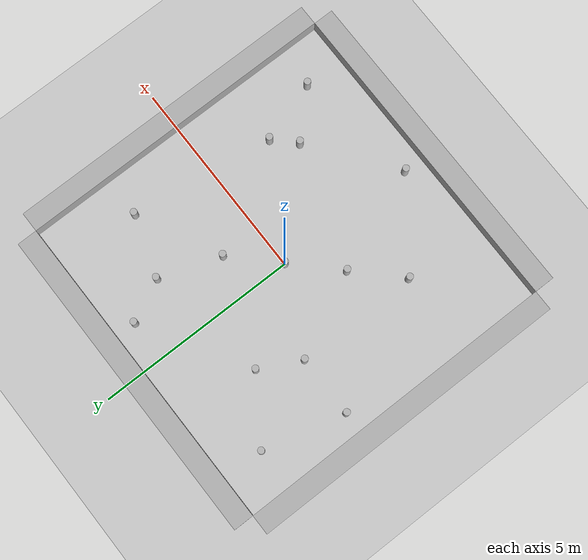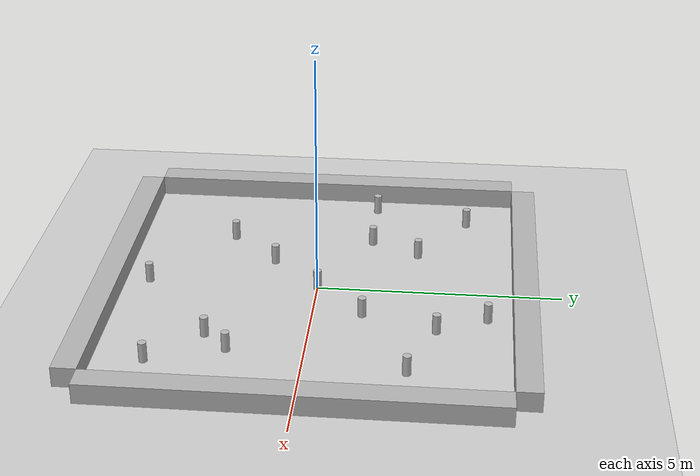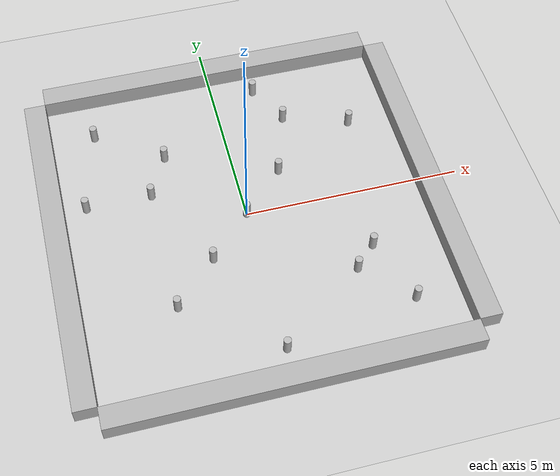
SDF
<?xml version="1.0" ?>
<sdf version="1.10">
    <world name="firearena">
        <physics name="1ms" type="ignored">
            <max_step_size>0.001</max_step_size>
            <real_time_factor>1.0</real_time_factor>
        </physics>
        <plugin
            filename="gz-sim-physics-system"
            name="gz::sim::systems::Physics">
        </plugin>
        <plugin
            filename="gz-sim-user-commands-system"
            name="gz::sim::systems::UserCommands">
        </plugin>
        <plugin
            filename="gz-sim-scene-broadcaster-system"
            name="gz::sim::systems::SceneBroadcaster">
        </plugin>
        <plugin filename="gz-sim-sensors-system"
            name="gz::sim::systems::Sensors">
            <render_engine>ogre2</render_engine>
        </plugin>

        <light type="directional" name="sun">
            <cast_shadows>true</cast_shadows>
            <pose>0 0 10 0 0 0</pose>
            <diffuse>0.8 0.8 0.8 1</diffuse>
            <specular>0.2 0.2 0.2 1</specular>
            <attenuation>
                <range>1000</range>
                <constant>0.9</constant>
                <linear>0.01</linear>
                <quadratic>0.001</quadratic>
            </attenuation>
            <direction>-0.5 0.1 -0.9</direction>
        </light>

        <model name="ground_plane">
            <static>true</static>
            <link name="link">
                <collision name="collision">
                    <geometry>
                        <plane>
                            <normal>0 0 1</normal>
                        </plane>
                    </geometry>
                </collision>
                <visual name="visual">
                    <geometry>
                        <plane>
                            <normal>0 0 1</normal>
                            <size>100 100</size>
                        </plane>
                    </geometry>
                    <material>
                        <ambient>0.8 0.8 0.8 1</ambient>
                        <diffuse>0.8 0.8 0.8 1</diffuse>
                        <specular>0.8 0.8 0.8 1</specular>
                    </material>
                </visual>
            </link>
        </model>

        <!-- Four-Wall Enclosure Model -->
        <model name="four_walls">
            <static>true</static>

            <!-- Wall 1 -->
            <link name="wall_1">
                <pose>-4.25 0 0.2084 0 0 0</pose>
                <visual name="visual_1">
                    <geometry>
                        <box>
                            <size>0.5 8 0.416666</size>
                        </box>
                    </geometry>
                    <material>
                        <ambient>0.7 0.7 0.7 1</ambient>
                    </material>
                </visual>
                <collision name="collision_1">
                    <geometry>
                        <box>
                            <size>0.5 8 0.416666</size>
                        </box>
                    </geometry>
                </collision>
            </link>

            <!-- Wall 2 -->
            <link name="wall_2">
                <pose>4.25 0 0.2084 0 0 0</pose>
                <visual name="visual_2">
                    <geometry>
                        <box>
                            <size>0.5 8 0.416666</size>
                        </box>
                    </geometry>
                    <material>
                        <ambient>0.7 0.7 0.7 1</ambient>
                    </material>
                </visual>
                <collision name="collision_2">
                    <geometry>
                        <box>
                            <size>0.5 8 0.416666</size>
                        </box>
                    </geometry>
                </collision>
            </link>

            <!-- Wall 3 -->
            <link name="wall_3">
                <pose>0 -4.25 0.2084 0 0 1.5708</pose>
                <visual name="visual_3">
                    <geometry>
                        <box>
                            <size>0.5 8 0.416666</size>
                        </box>
                    </geometry>
                    <material>
                        <ambient>0.7 0.7 0.7 1</ambient>
                    </material>
                </visual>
                <collision name="collision_3">
                    <geometry>
                        <box>
                            <size>0.5 8 0.416666</size>
                        </box>
                    </geometry>
                </collision>
            </link>

            <!-- Wall 4 -->
            <link name="wall_4">
                <pose>0 4.25 0.2084 0 0 1.5708</pose>
                <visual name="visual_4">
                    <geometry>
                        <box>
                            <size>0.5 8 0.416666</size>
                        </box>
                    </geometry>
                    <material>
                        <ambient>0.7 0.7 0.7 1</ambient>
                    </material>
                </visual>
                <collision name="collision_4">
                    <geometry>
                        <box>
                            <size>0.5 8 0.416666</size>
                        </box>
                    </geometry>
                </collision>
            </link>
        </model>

        <!-- Obstacles -->
        <model name="obstacles">
            <static>true</static>
            <link name="obstacle_1">
                <pose>1 1 0.2084 0 0 0</pose>
                <visual name="visual_1">
                    <geometry>
                        <cylinder>
                            <radius>0.0833</radius>
                            <length>0.4167</length>
                        </cylinder>
                    </geometry>
                </visual>
                <collision name="collision_1">
                    <geometry>
                        <cylinder>
                            <radius>0.0833</radius>
                            <length>0.4167</length>
                        </cylinder>
                    </geometry>
                </collision>
            </link>
            <link name="obstacle_2">
                <pose>-1 -1 0.2084 0 0 0</pose>
                <visual name="visual_2">
                    <geometry>
                        <cylinder>
                            <radius>0.0833</radius>
                            <length>0.4167</length>
                        </cylinder>
                    </geometry>
                </visual>
                <collision name="collision_2">
                    <geometry>
                        <cylinder>
                            <radius>0.0833</radius>
                            <length>0.4167</length>
                        </cylinder>
                    </geometry>
                </collision>
            </link>
            <link name="obstacle_3">
                <pose>2 -2 0.2084 0 0 0</pose>
                <visual name="visual_3">
                    <geometry>
                        <cylinder>
                            <radius>0.0833</radius>
                            <length>0.4167</length>
                        </cylinder>
                    </geometry>
                </visual>
                <collision name="collision_3">
                    <geometry>
                        <cylinder>
                            <radius>0.0833</radius>
                            <length>0.4167</length>
                        </cylinder>
                    </geometry>
                </collision>
            </link>
            <link name="obstacle_4">
                <pose>-2 1 0.2084 0 0 0</pose>
                <visual name="visual_4">
                    <geometry>
                        <cylinder>
                            <radius>0.0833</radius>
                            <length>0.4167</length>
                        </cylinder>
                    </geometry>
                </visual>
                <collision name="collision_4">
                    <geometry>
                        <cylinder>
                            <radius>0.0833</radius>
                            <length>0.4167</length>
                        </cylinder>
                    </geometry>
                </collision>
            </link>
            <link name="obstacle_5">
                <pose>3 -3 0.2084 0 0 0</pose>
                <visual name="visual_5">
                    <geometry>
                        <cylinder>
                            <radius>0.0833</radius>
                            <length>0.4167</length>
                        </cylinder>
                    </geometry>
                </visual>
                <collision name="collision_5">
                    <geometry>
                        <cylinder>
                            <radius>0.0833</radius>
                            <length>0.4167</length>
                        </cylinder>
                    </geometry>
                </collision>
            </link>
            <link name="obstacle_6">
                <pose>0 0 0.2084 0 0 0</pose>
                <visual name="visual_6">
                    <geometry>
                        <cylinder>
                            <radius>0.0833</radius>
                            <length>0.4167</length>
                        </cylinder>
                    </geometry>
                </visual>
                <collision name="collision_6">
                    <geometry>
                        <cylinder>
                            <radius>0.0833</radius>
                            <length>0.4167</length>
                        </cylinder>
                    </geometry>
                </collision>
            </link>
            <link name="obstacle_7">
                <pose>1.5 2.5 0.2084 0 0 0</pose>
                <visual name="visual_7">
                    <geometry>
                        <cylinder>
                            <radius>0.0833</radius>
                            <length>0.4167</length>
                        </cylinder>
                    </geometry>
                </visual>
                <collision name="collision_7">
                    <geometry>
                        <cylinder>
                            <radius>0.0833</radius>
                            <length>0.4167</length>
                        </cylinder>
                    </geometry>
                </collision>
            </link>
            <link name="obstacle_8">
                <pose>-3 3 0.2084 0 0 0</pose>
                <visual name="visual_8">
                    <geometry>
                        <cylinder>
                            <radius>0.0833</radius>
                            <length>0.4167</length>
                        </cylinder>
                    </geometry>
                </visual>
                <collision name="collision_8">
                    <geometry>
                        <cylinder>
                            <radius>0.0833</radius>
                            <length>0.4167</length>
                        </cylinder>
                    </geometry>
                </collision>
            </link>
            <link name="obstacle_9">
                <pose>2.5 -1.5 0.2084 0 0 0</pose>
                <visual name="visual_9">
                    <geometry>
                        <cylinder>
                            <radius>0.0833</radius>
                            <length>0.4167</length>
                        </cylinder>
                    </geometry>
                </visual>
                <collision name="collision_9">
                    <geometry>
                        <cylinder>
                            <radius>0.0833</radius>
                            <length>0.4167</length>
                        </cylinder>
                    </geometry>
                </collision>
            </link>
            <link name="obstacle_10">
                <pose>-2 -2 0.2084 0 0 0</pose>
                <visual name="visual_10">
                    <geometry>
                        <cylinder>
                            <radius>0.0833</radius>
                            <length>0.4167</length>
                        </cylinder>
                    </geometry>
                </visual>
                <collision name="collision_10">
                    <geometry>
                        <cylinder>
                            <radius>0.0833</radius>
                            <length>0.4167</length>
                        </cylinder>
                    </geometry>
                </collision>
            </link>
            <link name="obstacle_11">
                <pose>-3.5 1 0.2084 0 0 0</pose>
                <visual name="visual_11">
                    <geometry>
                        <cylinder>
                            <radius>0.0833</radius>
                            <length>0.4167</length>
                        </cylinder>
                    </geometry>
                </visual>
                <collision name="collision_11">
                    <geometry>
                        <cylinder>
                            <radius>0.0833</radius>
                            <length>0.4167</length>
                        </cylinder>
                    </geometry>
                </collision>
            </link>
            <link name="obstacle_12">
                <pose>1 3.5 0.2084 0 0 0</pose>
                <visual name="visual_12">
                    <geometry>
                        <cylinder>
                            <radius>0.0833</radius>
                            <length>0.4167</length>
                        </cylinder>
                    </geometry>
                </visual>
                <collision name="collision_12">
                    <geometry>
                        <cylinder>
                            <radius>0.0833</radius>
                            <length>0.4167</length>
                        </cylinder>
                    </geometry>
                </collision>
            </link>
            <link name="obstacle_13">
                <pose>-1.5 2 0.2084 0 0 0</pose>
                <visual name="visual_13">
                    <geometry>
                        <cylinder>
                            <radius>0.0833</radius>
                            <length>0.4167</length>
                        </cylinder>
                    </geometry>
                </visual>
                <collision name="collision_13">
                    <geometry>
                        <cylinder>
                            <radius>0.0833</radius>
                            <length>0.4167</length>
                        </cylinder>
                    </geometry>
                </collision>
            </link>
            <link name="obstacle_14">
                <pose>0 -3.5 0.2084 0 0 0</pose>
                <visual name="visual_14">
                    <geometry>
                        <cylinder>
                            <radius>0.0833</radius>
                            <length>0.4167</length>
                        </cylinder>
                    </geometry>
                </visual>
                <collision name="collision_14">
                    <geometry>
                        <cylinder>
                            <radius>0.0833</radius>
                            <length>0.4167</length>
                        </cylinder>
                    </geometry>
                </collision>
            </link>
            <link name="obstacle_15">
                <pose>3 2 0.2084 0 0 0</pose>
                <visual name="visual_15">
                    <geometry>
                        <cylinder>
                            <radius>0.0833</radius>
                            <length>0.4167</length>
                        </cylinder>
                    </geometry>
                </visual>
                <collision name="collision_15">
                    <geometry>
                        <cylinder>
                            <radius>0.0833</radius>
                            <length>0.4167</length>
                        </cylinder>
                    </geometry>
                </collision>
            </link>
        </model>
    </world>
</sdf>
